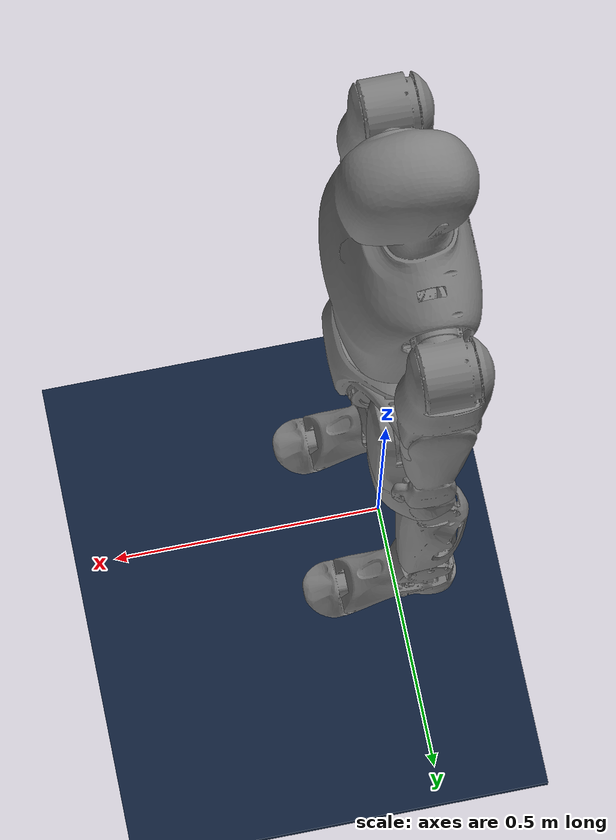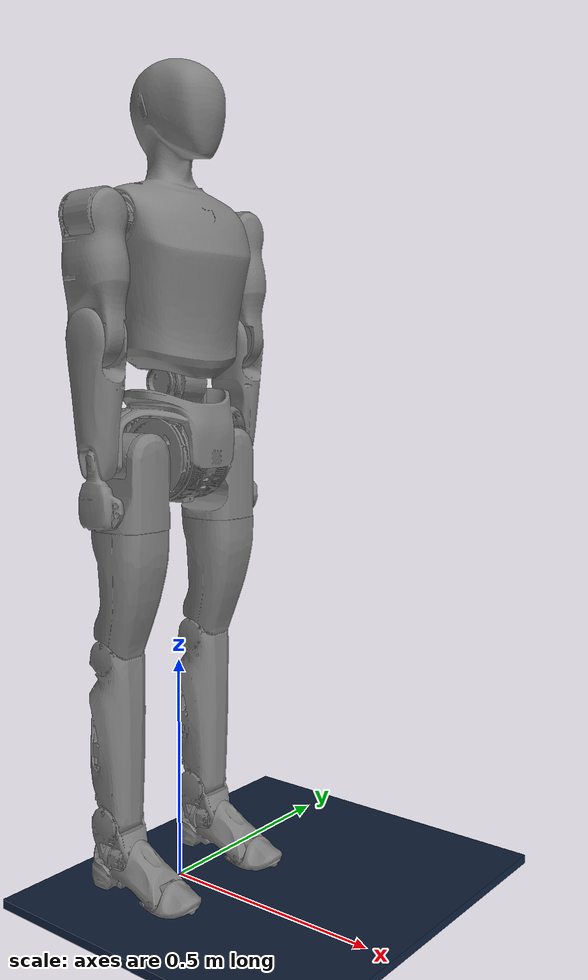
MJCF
<mujoco model="InRealV2">
  <compiler angle="radian" meshdir="../mesh/"/>
  <option timestep="0.005"/>

  <asset>
    <mesh name="R" content_type="model/stl" file="R.stl"/>
    <mesh name="L1" content_type="model/stl" file="L1.stl"/>
    <mesh name="L11" content_type="model/stl" file="L1.stl" scale="1 -1 1"/>
    <mesh name="L2" content_type="model/stl" file="L2.stl"/>
    <mesh name="L21" content_type="model/stl" file="L2.stl" scale="1 -1 1"/>
    <mesh name="L3" content_type="model/stl" file="L3.stl"/>
    <mesh name="L31" content_type="model/stl" file="L3.stl" scale="1 -1 1"/>
    <mesh name="L4" content_type="model/stl" file="L4.stl"/>
    <mesh name="L41" content_type="model/stl" file="L4.stl" scale="1 -1 1"/>
    <mesh name="L5" content_type="model/stl" file="L5.stl"/>
    <mesh name="L51" content_type="model/stl" file="L5.stl" scale="1 -1 1"/>
    <mesh name="L6" content_type="model/stl" file="L6.stl"/>
    <mesh name="L7" content_type="model/stl" file="L7.stl"/>
    <mesh name="L61" content_type="model/stl" file="L6.stl" scale="1 -1 1"/>
    <mesh name="L71" content_type="model/stl" file="L7.stl" scale="1 -1 1"/>
    <mesh name="W" content_type="model/stl" file="W.stl"/>
    <mesh name="C" content_type="model/stl" file="C.stl"/>
    <mesh name="A1" content_type="model/stl" file="A1.stl"/>
    <mesh name="A11" content_type="model/stl" file="A1.stl" scale="1 -1 1"/>
    <mesh name="A2" content_type="model/stl" file="A2.stl"/>
    <mesh name="A21" content_type="model/stl" file="A2.stl" scale="1 -1 1"/>
    <mesh name="A3" content_type="model/stl" file="A3.stl"/>
    <mesh name="A31" content_type="model/stl" file="A3.stl" scale="1 -1 1"/>
  </asset>

  <!-- setup scene -->
  <statistic center="0 0 1.0" extent="1.0"/>
  <visual>
    <headlight diffuse="0.6 0.6 0.6" ambient="0.4 0.4 0.4" specular="0.1 0.1 0.1"/>
    <rgba haze="0.06 0.1 0.16 1"/>
    <global azimuth="225" elevation="-25" offwidth="2080" offheight="1170"/>
  </visual>
  <asset>
    <texture type="skybox" builtin="gradient"
      rgb1="0.18 0.28 0.40" rgb2="0.02 0.04 0.10"
      width="512" height="512"/>
    <texture type="2d" name="groundplane" builtin="checker" mark="edge"
      rgb1="0.09 0.19 0.31" rgb2="0.03 0.06 0.15"
      markrgb="0.45 0.65 0.90" width="512" height="512"/>
    <material name="groundplane" texture="groundplane" texuniform="true"
      texrepeat="5 5" reflectance="0.25"/>
  </asset>

  <worldbody>
    <geom name="floor" size="100 100 0.01" type="box" material="groundplane" contype="1" conaffinity="1" priority="1"
      friction="1.0 0.001 0.001" condim="3" solimp="0.9 0.95 0.01" solref="0.02 1"/>
    <light name="main" directional="true" diffuse="0.6 0.6 0.6" specular="0.1 0.1 0.1"
      pos="0 0 10" dir="0.2 0.3 -1" castshadow="true"/>
    <light name="fill" directional="true" diffuse="0.25 0.25 0.3" specular="0.0 0.0 0.0"
      pos="0 0 5" dir="-0.2 -0.3 -1" castshadow="false"/>
    <!-- 地面接触参数设置:
         friction="[μ_滑动摩擦 μ_转滚 μ_扭转]"
         solimp="[impratio 摩擦损失 阻尼]"
         solref="[时间常数 阻尼比]"
         可以根据需要调整这些值来改变机器人与地面的接触特性 -->
    <!-- solimp 的第一个参数就是恢复系数(coefficient of restitution)
         典型值: 0.0=完全塑性 ~ 1.0=完全弹性 -->
<body name="pelvis" pos="0 0 1.12">
      <camera name="follow_pelvis" pos="-1.2 4.0 1.2" euler="0 0 0" mode="track"/>
      <inertial pos="0 0 -0.146" mass="10.983"
              fullinertia="0.0767 0.067598 0.06648 0.0 0.0002 0.000035"/>
      <geom type="mesh" contype="0" conaffinity="0" group="1" density="0" mesh="R"/>
      <geom size="0.05 0.175 0.05" pos="0 0 -0.035" type="box" group="3"/>
      <joint name="floating_base_joint" type="free"/>
      <body name="left_hip_pitch_link" pos="0 0.1407 -0.159">
        <inertial pos="0 -0.001 0" mass="2.425"
                  fullinertia="0.0039 0.00294 0.003173 0.0 0.0 0.0"/>
        <joint name="left_hip_pitch_joint" pos="0 0 0" axis="0 1 0" range="-1.57 1.57" actuatorfrcrange="-586.85 586.85" armature="0.291"/>
        <geom type="mesh" contype="0" conaffinity="0" group="1" density="0" mesh="L1"/>
        <geom size="0.055 0.035" quat="0.707035 0 0.707179 0" type="cylinder" group="3"/>
        <body name="left_hip_roll_link" pos="-0.01 0 0">
          <inertial pos="0.00137 0 -0.134" mass="3.246"
                  fullinertia="0.011788 0.013069 0.006657 0.0 -0.000619 0.0"/>
          <joint name="left_hip_roll_joint" pos="0 0 0" axis="1 0 0" range="-0.35 1.57" actuatorfrcrange="-336 336" armature="0.181"/>
          <geom type="mesh" contype="0" conaffinity="0" group="1" density="0" mesh="L2"/>
          <geom size="0.05 0.04" pos="0 0 -0.1" type="cylinder" group="3"/>
          <body name="left_hip_yaw_link" pos="0 0 -0.2051">
            <inertial pos="-0.0183 -0.00116 -0.126" mass="4.39"
                  fullinertia="0.022056 0.022705 0.006937 -0.00014 -0.003543 -0.000577"/>
            <joint name="left_hip_yaw_joint" pos="0 0 0" axis="0 0 1" range="-0.785 0.785" actuatorfrcrange="-336 336" armature="0.181"/>
            <geom type="mesh" contype="0" conaffinity="0" group="1" density="0" mesh="L3"/>
            <geom size="0.07 0.075" pos="0 0 -0.05" type="cylinder" group="3"/>
            <body name="left_knee_link" pos="-0.043 0 -0.2226">
              <inertial pos="0.00177 -0.001 -0.255" mass="4.497"
                      fullinertia="0.041829 0.041676 0.00548 0.0 -0.001088 -0.000912"/>
              <joint name="left_knee_joint" pos="0 0 0" axis="0 1 0" range="-0.26 2.2" actuatorfrcrange="-338.4 338.4" armature="0.0509"/>
              <geom type="mesh" contype="0" conaffinity="0" group="1" density="0" mesh="L4"/>
              <geom size="0.05 0.125" pos="0 0 -0.15" type="cylinder" group="3"/>
              <body name="left_ankle_pitch_link" pos="0 0 -0.37">
                <inertial pos="0.0117 0.001 -0.06" mass="0.954"
                      fullinertia="0.001685 0.001915 0.001284 0.000011 0.000243 -0.000055"/>
                <joint name="left_ankle_pitch_joint" pos="0 0 0" axis="0 1 0" range="-0.6 0.75" actuatorfrcrange="-338.4 338.4" armature="0.0509"/>
                <geom type="mesh" contype="0" conaffinity="0" group="1" density="0" mesh="L5"/>
                <geom size="0.05 0.05" quat="0.707035 0.707179 0 0" type="cylinder" group="3"/>
                <body name="left_ankle_roll_link" pos="0.014 0 -0.085">
                  <site name="Ltoe" size = "0.02"/>
                  <site name="Lsoles" size = "0.01" pos="0 0 -0.055"/>
                  <site name="Lsoles_f" size = "0.01" pos="0.2 0.0 -0.055"/>
                  <inertial pos="0.045 0 -0.022" mass="0.91"
                          fullinertia="0.001 0.00307 0.002570 0.0 0.000236 0.0"/>
                  <joint name="left_ankle_roll_joint" pos="0 0 0" axis="1 0 0" range="-0.26 0.26" actuatorfrcrange="-38.4 38.4" armature="0.001584"/>
                  <geom type="mesh" contype="0" conaffinity="0" group="1" density="0" mesh="L6"/>
                  <geom size="0.01 0.025" pos="-0.03 0 -0.056" quat="0.707035 0 0.707179 0" type="cylinder" group="3"/>
                  <geom size="0.01 0.0225" pos="-0.026 0.018 -0.056" quat="0.707035 0 0.707179 0" type="cylinder" group="3"/>
                  <geom size="0.01 0.015" pos="-0.022 0.036 -0.056" quat="0.707035 0 0.707179 0" type="cylinder" group="3"/>
                  <geom size="0.01 0.0225" pos="-0.026 -0.018 -0.056" quat="0.707035 0 0.707179 0" type="cylinder" group="3"/>
                  <geom size="0.01 0.015" pos="-0.022 -0.036 -0.056" quat="0.707035 0 0.707179 0" type="cylinder" group="3"/>
                  <geom size="0.05 0.05 0.035" pos="0 0 -0.01" type="box" group="3"/>
                  <geom pos="0.131255 0 -0.0463567" type="mesh" contype="0" conaffinity="0" group="1" density="0" mesh="L7"/>
                  <geom size="0.01 0.06" pos="0.1412551 0 -0.0563567" quat="0.707035 0 0.707179 0" type="cylinder" group="3"/>
                  <geom size="0.01 0.05" pos="0.1412551 0.02 -0.0563567" quat="0.707035 0 0.707179 0" type="cylinder" group="3"/>
                  <geom size="0.01 0.04" pos="0.1412551 0.04 -0.0563567" quat="0.707035 0 0.707179 0" type="cylinder" group="3"/>
                  <geom size="0.01 0.05" pos="0.1412551 -0.02 -0.0563567" quat="0.707035 0 0.707179 0" type="cylinder" group="3"/>
                  <geom size="0.01 0.04" pos="0.1412551 -0.04 -0.0563567" quat="0.707035 0 0.707179 0" type="cylinder" group="3"/>
                  <body name="left_toe_link" pos="0.1 0 -0.02"/>
                </body>
              </body>
            </body>
          </body>
        </body>
      </body>
      <body name="right_hip_pitch_link" pos="0 -0.1417 -0.159">
        <inertial pos="0 0.001 0" mass="2.425"
                fullinertia="0.0039 0.00294 0.003173 0.0 0.0 0.0"/>
        <joint name="right_hip_pitch_joint" pos="0 0 0" axis="0 1 0" range="-1.57 1.57" actuatorfrcrange="-586.85 586.85" armature="0.291"/>
        <geom type="mesh" contype="0" conaffinity="0" group="1" density="0" mesh="L11"/>
        <geom size="0.055 0.035" quat="0.707035 0 0.707179 0" type="cylinder" group="3"/>
        <body name="right_hip_roll_link" pos="-0.01 0 0">
          <inertial pos="0.00137 0 -0.134" mass="3.246"
                  fullinertia="0.011788 0.013069 0.006657 0.0 -0.000619 0.0"/>
          <joint name="right_hip_roll_joint" pos="0 0 0" axis="1 0 0" range="-1.57 0.35" actuatorfrcrange="-336 336" armature="0.181"/>
          <geom type="mesh" contype="0" conaffinity="0" group="1" density="0" mesh="L21"/>
          <geom size="0.05 0.04" pos="0 0 -0.1" type="cylinder" group="3"/>
          <body name="right_hip_yaw_link" pos="0 0 -0.2051">
            <inertial pos="-0.0183 0.00116 -0.126" mass="4.39"
                    fullinertia="0.022056 0.022705 0.006937 0.000147 -0.003543 0.000577"/>
            <joint name="right_hip_yaw_joint" pos="0 0 0" axis="0 0 1" range="-0.785 0.785" actuatorfrcrange="-336 336" armature="0.181"/>
            <geom type="mesh" contype="0" conaffinity="0" group="1" density="0" mesh="L31"/>
            <geom size="0.07 0.075" pos="0 0 -0.05" type="cylinder" group="3"/>
            <body name="right_knee_link" pos="-0.043 0 -0.2226">
              <inertial pos="0.00177 -0.001 -0.255" mass="4.497"
                      fullinertia="0.041829 0.041676 0.00548 0.0 -0.001088 0.000912"/>
              <joint name="right_knee_joint" pos="0 0 0" axis="0 1 0" range="-0.26 2.2" actuatorfrcrange="-338.4 338.4" armature="0.0509"/>
              <geom type="mesh" contype="0" conaffinity="0" group="1" density="0" mesh="L41"/>
              <geom size="0.05 0.125" pos="0 0 -0.15" type="cylinder" group="3"/>
              <body name="right_ankle_pitch_link" pos="0 0 -0.37">
                <inertial pos="0.0117 -0.001 -0.06" mass="0.954"
                        fullinertia="0.001685 0.001915 0.001284 -0.000011 0.000243 0.000055"/>
                <joint name="right_ankle_pitch_joint" pos="0 0 0" axis="0 1 0" range="-0.6 0.75" actuatorfrcrange="-338.4 338.4" armature="0.0509"/>
                <geom type="mesh" contype="0" conaffinity="0" group="1" density="0" mesh="L51"/>
                <geom size="0.05 0.05" quat="0.707035 0.707179 0 0" type="cylinder" group="3"/>
                <body name="right_ankle_roll_link" pos="0.014 0 -0.085">
                  <site name="Rtoe" size = "0.02"/>
                  <site name="Rsoles" size = "0.01" pos="0 0 -0.055"/>
                  <site name="Rsoles_f" size = "0.01" pos="0.2 0.0 -0.055"/>
                  <inertial pos="0.045 0 -0.022" mass="0.91"
                          fullinertia="0.001 0.00307 0.002570 0.0 0.000236 0.0"/>
                  <joint name="right_ankle_roll_joint" pos="0 0 0" axis="1 0 0" range="-0.26 0.26" actuatorfrcrange="-38.4 38.4" armature="0.001584"/>
                  <geom type="mesh" contype="0" conaffinity="0" group="1" density="0" mesh="L61"/>
                  <geom size="0.05 0.05 0.035" pos="0 0 -0.01" type="box" group="3"/>
                  <geom size="0.01 0.025" pos="-0.03 0 -0.056" quat="0.707035 0 0.707179 0" type="cylinder" group="3"/>
                  <geom size="0.01 0.0225" pos="-0.026 0.018 -0.056" quat="0.707035 0 0.707179 0" type="cylinder" group="3"/>
                  <geom size="0.01 0.015" pos="-0.022 0.036 -0.056" quat="0.707035 0 0.707179 0" type="cylinder" group="3"/>
                  <geom size="0.01 0.0225" pos="-0.026 -0.018 -0.056" quat="0.707035 0 0.707179 0" type="cylinder" group="3"/>
                  <geom size="0.01 0.015" pos="-0.022 -0.036 -0.056" quat="0.707035 0 0.707179 0" type="cylinder" group="3"/>
                  <geom pos="0.131255 0 -0.0463567" type="mesh" contype="0" conaffinity="0" group="1" density="0" mesh="L71"/>
                  <geom size="0.01 0.06" pos="0.1412551 0 -0.0563567" quat="0.707035 0 0.707179 0" type="cylinder" group="3"/>
                  <geom size="0.01 0.05" pos="0.1412551 0.02 -0.0563567" quat="0.707035 0 0.707179 0" type="cylinder" group="3"/>
                  <geom size="0.01 0.04" pos="0.1412551 0.04 -0.0563567" quat="0.707035 0 0.707179 0" type="cylinder" group="3"/>
                  <geom size="0.01 0.05" pos="0.1412551 -0.02 -0.0563567" quat="0.707035 0 0.707179 0" type="cylinder" group="3"/>
                  <geom size="0.01 0.04" pos="0.1412551 -0.04 -0.0563567" quat="0.707035 0 0.707179 0" type="cylinder" group="3"/>
                  <body name="right_toe_link" pos="0.1 0 -0.02"/>
                </body>
              </body>
            </body>
          </body>
        </body>
      </body>
      <body name="waist_pitch_link">
        <inertial pos="0 0 0.042" mass="4.139"
                fullinertia="0.014 0.015 0.00576 0.0 0.0 0.0"/>
        <joint name="waist_pitch_joint" pos="0 0 0" axis="0 1 0" range="-1.2 1.2" actuatorfrcrange="-336 336" armature="0.181"/>
        <geom type="mesh" contype="0" conaffinity="0" group="1" density="0" mesh="W"/>
        <body name="torso_link" pos="-0.018 0 0.3315">
          <site name="IMU" pos="0 0 0" size="0.01" quat="1 0 0 0 "/>
          <inertial pos="0.0082 0 0.011" mass="14.292"
                  fullinertia="0.36 0.276 0.1486 0.0 0.0215 -0.0022"/>
          <joint name="waist_yaw_joint" pos="0 0 0" axis="0 0 1" range="-3.14 3.14" actuatorfrcrange="-336 336" armature="0.036"/>
          <geom type="mesh" contype="0" conaffinity="0" group="1" density="0" mesh="C"/>
          <geom size="0.05 0.15 0.25" type="box" group="3"/>
          <body name="left_shoulder_pitch_link" pos="0 0.2207 0">
            <inertial pos="0 -0.0036 0" mass="2.451"
                    fullinertia="0.00412 0.00285 0.00330 0.0 0.0 0.0"/>
            <joint name="left_shoulder_pitch_joint" pos="0 0 0" axis="0 1 0" range="-3.14 1.57" actuatorfrcrange="-336 336" armature="0.0509"/>
            <geom type="mesh" contype="0" conaffinity="0" group="1" density="0" mesh="A1"/>
            <geom size="0.04 0.035" pos="0 0.01 0" quat="0.707035 0 0.707179 0" type="cylinder" group="3"/>
            <body name="left_shoulder_roll_link">
              <inertial pos="-0.0012 -0.0025 -0.192" mass="2.526"
                      fullinertia="0.0174 0.019585 0.0046 0.0 0.000419 0.000297"/>
              <joint name="left_shoulder_roll_joint" pos="0 0 0" axis="1 0 0" range="-0.13 1.57" actuatorfrcrange="-336 336" armature="0.0509"/>
              <geom type="mesh" contype="0" conaffinity="0" group="1" density="0" mesh="A2"/>
              <geom size="0.05 0.1" pos="0 0.02 -0.15" type="cylinder" group="3"/>
              <body name="left_elbow_link" pos="0 0 -0.2385">
                <inertial pos="-0.0014 0.00597 -0.134" mass="1.679"
                        fullinertia="0.012 0.012758 0.002287 0.0 0.000256 0.000148"/>
                <joint name="left_elbow_joint" pos="0 0 0" axis="0 1 0" range="-1.76 0" actuatorfrcrange="-112.2 112.2" armature="0.036"/>
                <geom type="mesh" contype="0" conaffinity="0" group="1" density="0" mesh="A3"/>
                <geom size="0.02 0.09" pos="0 0.03 -0.15" type="cylinder" group="3"/>
                <body name="left_hand_link" pos="0 0 -0.2385">
                  <inertial pos="0 0 0" mass="1e-5" diaginertia="1e-15 1e-15 1e-15"/>
                  <geom type="sphere" size="0.035" pos="0 0.03 0.0" contype="1" conaffinity="1" group="3" />
                </body>
              </body>
            </body>
          </body>
          <body name="right_shoulder_pitch_link" pos="0 -0.2207 0">
            <inertial pos="0 0.0036 0" mass="2.451"
                    fullinertia="0.00412 0.00285 0.00330 0.0 0.0 0.0"/>
            <joint name="right_shoulder_pitch_joint" pos="0 0 0" axis="0 1 0" range="-3.14 1.57" actuatorfrcrange="-336 336" armature="0.0509"/>
            <geom type="mesh" contype="0" conaffinity="0" group="1" density="0" mesh="A11"/>
            <geom size="0.04 0.035" pos="0 -0.01 0" quat="0.707035 0 0.707179 0" type="cylinder" group="3"/>
            <body name="right_shoulder_roll_link">
              <inertial pos="-0.0012 0.0025 -0.192" mass="2.526"
                      fullinertia="0.0174 0.019585 0.0046 0.0 0.000419 -0.000297"/>
              <joint name="right_shoulder_roll_joint" pos="0 0 0" axis="1 0 0" range="-1.57 0.13" actuatorfrcrange="-336 336" armature="0.0509"/>
              <geom type="mesh" contype="0" conaffinity="0" group="1" density="0" mesh="A21"/>
              <geom size="0.05 0.1" pos="0 -0.02 -0.15" type="cylinder" group="3"/>
              <body name="right_elbow_link" pos="0 0 -0.2385">
                <inertial pos="-0.0014 -0.00597 -0.134" mass="1.679"
                        fullinertia="0.012 0.012758 0.002287 0.0 0.000256 -0.000148"/>
                <joint name="right_elbow_joint" pos="0 0 0" axis="0 1 0" range="-1.76 0" actuatorfrcrange="-112.2 112.2" armature="0.036"/>
                <geom type="mesh" contype="0" conaffinity="0" group="1" density="0" mesh="A31"/>
                <geom size="0.02 0.09" pos="0 -0.03 -0.15" type="cylinder" group="3"/>
                <body name="right_hand_link" pos="0 0 -0.2385">
                  <inertial pos="0 0 0" mass="1e-5" diaginertia="1e-15 1e-15 1e-15"/>
                  <geom type="sphere" size="0.035" pos="0 -0.03 0.0" contype="1" conaffinity="1" group="3"/>
                </body>
              </body>
            </body>
          </body>
        </body>
      </body>
    </body>
  </worldbody>

  <actuator>
      <motor name = "left_hip_pitch_joint" joint="left_hip_pitch_joint"/>
      <motor name = "left_hip_roll_joint" joint="left_hip_roll_joint"/>
      <motor name = "left_hip_yaw_joint" joint="left_hip_yaw_joint"/>
      <motor name = "left_knee_joint" joint="left_knee_joint"/>
      <motor name = "left_ankle_pitch_joint" joint="left_ankle_pitch_joint"/>
      <motor name = "left_ankle_roll_joint" joint="left_ankle_roll_joint"/>

      <motor name = "right_hip_pitch_joint" joint="right_hip_pitch_joint"/>
      <motor name = "right_hip_roll_joint" joint="right_hip_roll_joint"/>
      <motor name = "right_hip_yaw_joint" joint="right_hip_yaw_joint"/>
      <motor name = "right_knee_joint" joint="right_knee_joint"/>
      <motor name = "right_ankle_pitch_joint" joint="right_ankle_pitch_joint"/>
      <motor name = "right_ankle_roll_joint" joint="right_ankle_roll_joint"/>

      <motor name = "waist_pitch_joint" joint = "waist_pitch_joint"/>
      <motor name = "waist_yaw_joint" joint = "waist_yaw_joint"/>

      <motor name = "left_shoulder_pitch_joint" joint="left_shoulder_pitch_joint"/>
      <motor name = "left_shoulder_roll_joint" joint="left_shoulder_roll_joint"/>
      <motor name = "left_elbow_joint" joint="left_elbow_joint"/>

      <motor name = "right_shoulder_pitch_joint" joint="right_shoulder_pitch_joint"/>
      <motor name = "right_shoulder_roll_joint" joint="right_shoulder_roll_joint"/>
      <motor name = "right_elbow_joint" joint="right_elbow_joint"/>
  </actuator>

  <sensor>
    <accelerometer name="BodyAcc" site="IMU" noise="0.1"/>
    <gyro name="BodyGyro" site="IMU" noise="0.001"/>
  </sensor>
</mujoco>
